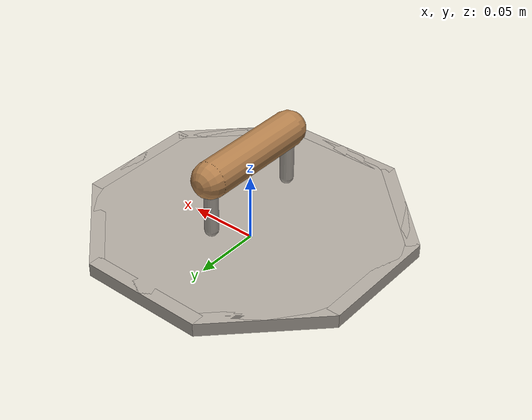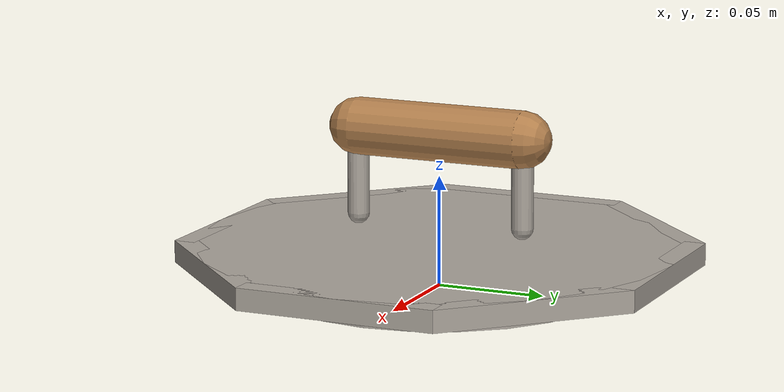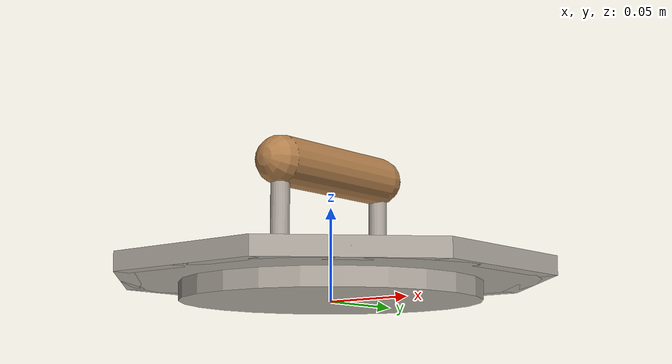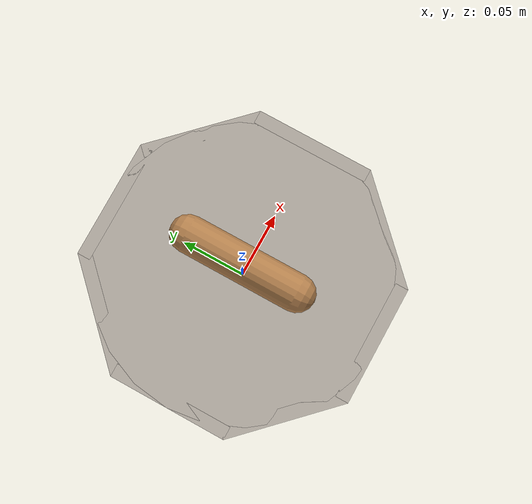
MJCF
<?xml version="1.0" encoding="utf-8"?>
<!-- from https://github.com/vikashplus/mj_envs/tree/master/mj_envs/hand_manipulation_suite/assets -->
<!-- Information about door can be found in this paper: https://arxiv.org/pdf/1709.10087.pdf -->

<mujoco model="pod_lid">
  <asset>
    <texture file="../textures/light-wood.png" type="cube" name="light-wood" />
    <texture file="../textures/steel-brushed.png" type="cube" name="steel" />
    <material name="MatSteel" texture="steel" specular="1" shininess="0.3" rgba="0.9 0.9 0.9 1" />
    <material name="MatLightWood" texture="light-wood" texrepeat="3 3" specular="0.4" shininess="0.1" />
  </asset>

  <worldbody>
    <body>
      <body name="object">
        <inertial pos="0 0 0" mass="0.1" diaginertia="0.025 0.025 0.005"/>
        <site name="origin" pos="0 0 0" rgba="0 0 0 0" size="0.005"/>

        <geom name="geom_top"
          pos="0 0 0.015"
          size="0.11 0.005" type="cylinder"
          group="0"
          material="MatSteel"
          />
        <geom name="geom_top1_visual"
          pos="0.105 0 0.015"
          size="0.005 0.0455635 0.005" type="box"
          group="1" contype="0" conaffinity="0"
          material="MatSteel"
          />
        <geom name="geom_top2_visual"
          pos="-0.105 0 0.015"
          size="0.005 0.0455635 0.005" type="box"
          group="1" contype="0" conaffinity="0"
          material="MatSteel"
          />
        <geom name="geom_top3_visual"
          pos="0 0.105 0.015" quat="0.707107 0 0 0.707107"
          size="0.005 0.0455635 0.005" type="box"
          group="1" contype="0" conaffinity="0"
          material="MatSteel"
          />
        <geom name="geom_top4_visual"
          pos="0 -0.105 0.015" quat="0.707107 0 0 0.707107"
          size="0.005 0.0455635 0.005" type="box"
          group="1" contype="0" conaffinity="0"
          material="MatSteel"
          />
        <geom name="geom_top5_visual"
          pos="0.0742462 0.0742462 0.015" quat="0.923880 0 0 0.382683"
          size="0.005 0.0455635 0.005" type="box"
          group="1" contype="0" conaffinity="0"
          material="MatSteel"
          />
        <geom name="geom_top6_visual"
          pos="-0.0742462 -0.0742462 0.015" quat="0.923880 0 0 0.382683"
          size="0.005 0.0455635 0.005" type="box"
          group="1" contype="0" conaffinity="0"
          material="MatSteel"
          />
        <geom name="geom_top7_visual"
          pos="-0.0742462 0.0742462 0.015" quat="0.382683 0 0 0.923880"
          size="0.005 0.0455635 0.005" type="box"
          group="1" contype="0" conaffinity="0"
          material="MatSteel"
          />
        <geom name="geom_top8_visual"
          pos=" 0.0742462 -0.0742462 0.015" quat="0.382683 0 0 0.923880"
          size="0.005 0.0455635 0.005" type="box"
          group="1" contype="0" conaffinity="0"
          material="MatSteel"
          />

        <geom name="geom_bottom"
          pos="0 0 0.005"
          size="0.08 0.005" type="cylinder"
          group="0" friction="1 1 1"
          material="MatSteel"
          />

        <body name="handle" pos="0 0 0.01">
          <geom name="geom_top_root1"
            fromto="0  0.04 0.02  0  0.04 0.06" size="0.005" type="box"
            group="0" friction="1 1 1"
            rgba="0 0 0 0"
            />
          <geom name="geom_top_root2"
            fromto="0 -0.04 0.02    0 -0.04 0.06" size="0.005" type="box"
            group="0" friction="1 1 1"
            rgba="0 0 0 0"
            />
          <geom name="geom_top_handle"
            fromto="0 -0.04 0.06 0  0.04 0.06" size="0.013" type="box"
            group="0" friction="1 1 1"
            rgba="0 0 0 0"
            />
          <geom name="geom_top_root1_visual"
            fromto="0  0.04 0.02  0  0.04 0.06" size="0.005" type="capsule"
          group="1" contype="0" conaffinity="0"
            material="MatSteel"
            />
          <geom name="geom_top_root2_visual"
            fromto="0 -0.04 0.02    0 -0.04 0.06" size="0.005" type="capsule"
          group="1" contype="0" conaffinity="0"
            material="MatSteel"
            />
          <geom name="geom_top_handle_visual"
            fromto="0 -0.04 0.06 0  0.04 0.06" size="0.013" type="capsule"
          group="1" contype="0" conaffinity="0"
            material="MatLightWood"
            />
          <site name="handle" pos="0.125 -0.10 0" size="0.02" rgba="0 0 1 0" />
        </body>

      </body>
      <site name="bottom_site" pos="0 0 -0.0207" rgba="0 0 0 0" size="0.005"/>
      <site name="top_site" pos="0 0 0.007" rgba="0 0 0 0" size="0.005"/>
      <site name="horizontal_radius_site" pos="0 0 0" rgba="0 0 0 0" size="0.003"/>
    </body>

  </worldbody>
</mujoco>
